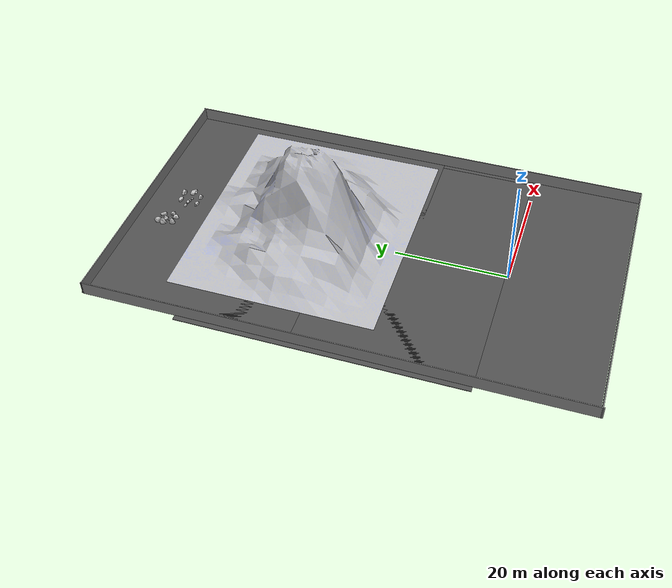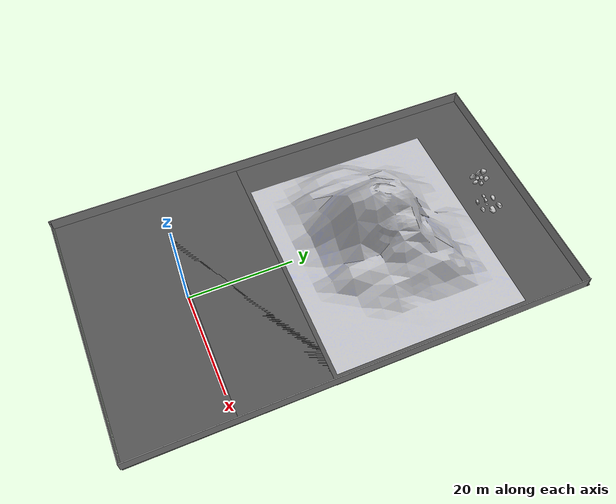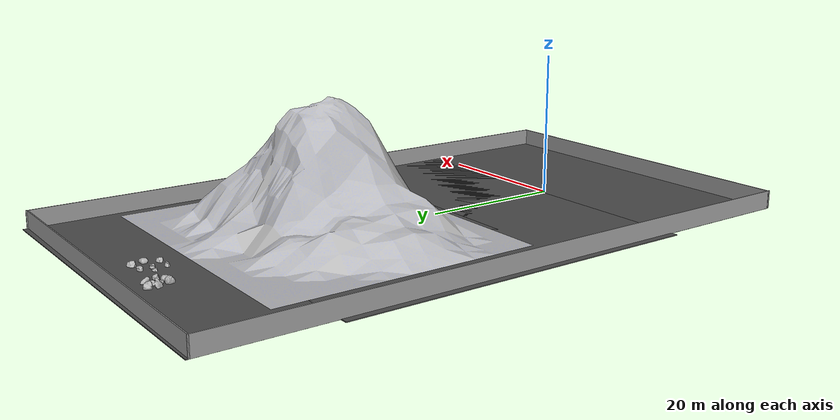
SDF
<sdf version="1.6">
 <world name="static tunnel">
  <light name="sun" type="directional">
   <pose>0 0 10 0 -0 0</pose>
   <diffuse>0.8 0.8 0.8 1</diffuse>
   <specular>0.2 0.2 0.2 1</specular>
   <attenuation>
    <range>1000</range>
    <constant>0.9</constant>
    <linear>0.01</linear>
    <quadratic>0.001</quadratic>
   </attenuation>
   <direction>-0.5 0.1 -0.9</direction>
  </light>
  <model name="asphalt_plane_1">
   <static>1</static>
   <link name="link">
    <collision name="collision"><geometry><box><size>50 50 0.1</size></box></geometry></collision>
    <visual name="visual">
     <cast_shadows>0</cast_shadows>
     <geometry><box><size>50 50 0.1</size></box></geometry>
     <material>
      <script>
       <uri>model://asphalt_plane/materials/scripts</uri>
       <uri>model://asphalt_plane/materials/textures</uri>
       <name>vrc/asphalt</name>
      </script>
     </material>
    </visual>
   </link>
   <pose>0.597976 6.1071 0 0 -0 0</pose>
  </model>
  <model name="asphalt_plane_2">
   <static>1</static>
   <link name="link">
    <collision name="collision"><geometry><box><size>50 50 0.1</size></box></geometry></collision>
    <visual name="visual">
     <cast_shadows>0</cast_shadows>
     <geometry><box><size>50 50 0.1</size></box></geometry>
     <material>
      <script>
       <uri>model://asphalt_plane/materials/scripts</uri>
       <uri>model://asphalt_plane/materials/textures</uri>
       <name>vrc/asphalt</name>
      </script>
     </material>
    </visual>
   </link>
   <pose>-0.378988 25.5648 0 0 -0 0</pose>
  </model>
  <model name="rock_1">
   <static>1</static>
   <link name="rock_1__link">
    <collision name="collision">
     <geometry><mesh><scale>3 3 3</scale><uri>model://rock_1/meshes/model.dae</uri></mesh></geometry>
    </collision>
    <visual name="visual">
     <geometry><mesh><scale>3 3 3</scale><uri>model://rock_1/meshes/model.dae</uri></mesh></geometry>
    </visual>
   </link>
   <pose>-11 55 0 0 0 -1.571</pose>
  </model>
  <model name="rock_2">
   <static>1</static>
   <link name="rock_2_link">
    <collision name="collision">
     <geometry><mesh><uri>model://rock_2/meshes/model.dae</uri></mesh></geometry>
    </collision>
    <visual name="visual"><geometry><mesh><uri>model://rock_2/meshes/model.dae</uri></mesh></geometry></visual>
   </link>
   <pose>-2.7737 60 0 0 -0 0</pose>
  </model>
  <model name="rock_4">
   <static>1</static>
   <link name="rock_4_link">
    <collision name="collision">
     <geometry><mesh><uri>model://rock_4/meshes/model.dae</uri></mesh></geometry>
    </collision>
    <visual name="visual"><geometry><mesh><uri>model://rock_4/meshes/model.dae</uri></mesh></geometry></visual>
   </link>
   <pose>1.88841 60 0 0 -0 0</pose>
  </model>
  <light name="user_point_light_0" type="point">
   <pose>0 3 6.2 0 -0 0</pose>
   <diffuse>0.5 0.5 0.5 1</diffuse>
   <specular>0.1 0.1 0.1 1</specular>
   <attenuation>
    <range>20</range>
    <constant>0.5</constant>
    <linear>0.01</linear>
    <quadratic>0.001</quadratic>
   </attenuation>
   <cast_shadows>0</cast_shadows>
   <direction>0 0 -1</direction>
  </light>
  <light name="user_point_light_1" type="point">
   <pose>0 8 6.2 0 -0 0</pose>
   <diffuse>0.5 0.5 0.5 1</diffuse>
   <specular>0.1 0.1 0.1 1</specular>
   <attenuation>
    <range>20</range>
    <constant>0.5</constant>
    <linear>0.01</linear>
    <quadratic>0.001</quadratic>
   </attenuation>
   <cast_shadows>0</cast_shadows>
   <direction>0 0 -1</direction>
  </light>
  <light name="user_point_light_2" type="point">
   <pose>0 13 6.2 0 -0 0</pose>
   <diffuse>0.5 0.5 0.5 1</diffuse>
   <specular>0.1 0.1 0.1 1</specular>
   <attenuation>
    <range>20</range>
    <constant>0.5</constant>
    <linear>0.01</linear>
    <quadratic>0.001</quadratic>
   </attenuation>
   <cast_shadows>0</cast_shadows>
   <direction>0 0 -1</direction>
  </light>
  <gravity>0 0 -9.8</gravity>
  <magnetic_field>6e-06 2.3e-05 -4.2e-05</magnetic_field>
  <atmosphere type="adiabatic"/>
  <physics name="default_physics" default="0" type="ode">
   <max_step_size>0.001</max_step_size>
   <real_time_factor>1</real_time_factor>
   <real_time_update_rate>1000</real_time_update_rate>
  </physics>
  <scene><ambient>0.4 0.4 0.4 1</ambient><background>0.7 0.7 0.7 1</background><shadows>1</shadows></scene>
  <audio><device>default</device></audio>
  <spherical_coordinates>
   <surface_model>EARTH_WGS84</surface_model>
   <latitude_deg>0</latitude_deg>
   <longitude_deg>0</longitude_deg>
   <elevation>0</elevation>
   <heading_deg>0</heading_deg>
  </spherical_coordinates>
  <model name="asphalt_plane_1_clone">
   <static>1</static>
   <link name="link">
    <collision name="collision"><geometry><box><size>50 50 0.1</size></box></geometry></collision>
    <visual name="visual">
     <cast_shadows>0</cast_shadows>
     <geometry><box><size>50 50 0.1</size></box></geometry>
     <material>
      <script>
       <uri>model://asphalt_plane/materials/scripts</uri>
       <uri>model://asphalt_plane/materials/textures</uri>
       <name>vrc/asphalt</name>
      </script>
     </material>
    </visual>
   </link>
   <pose>0.63738 42.636 0 0 -0 0</pose>
  </model>
  <model name="tunnel_closed">
   <pose>0.587089 24.0242 0 0 -0 0</pose>
   <link name="Wall_17">
    <collision name="Wall_17_Collision">
     <geometry><box><size>86.75 0.15 2.5</size></box></geometry>
     <pose>0 0 1.25 0 -0 0</pose>
    </collision>
    <visual name="Wall_17_Visual">
     <pose>0 0 1.25 0 -0 0</pose>
     <geometry><box><size>86.75 0.15 2.5</size></box></geometry>
     <material>
      <script><uri>file://media/materials/scripts/gazebo.material</uri><name>Gazebo/Grey</name></script>
      <ambient>1 1 1 1</ambient>
     </material>
     <meta><layer>0</layer></meta>
    </visual>
    <pose>-24.9714 -1e-06 0 0 -0 1.5708</pose>
   </link>
   <link name="Wall_18">
    <collision name="Wall_18_Collision">
     <geometry><box><size>50.137 0.15 2.5</size></box></geometry>
     <pose>0 0 1.25 0 -0 0</pose>
    </collision>
    <visual name="Wall_18_Visual">
     <pose>0 0 1.25 0 -0 0</pose>
     <geometry><box><size>50.137 0.15 2.5</size></box></geometry>
     <material>
      <script><uri>file://media/materials/scripts/gazebo.material</uri><name>Gazebo/Grey</name></script>
      <ambient>1 1 1 1</ambient>
     </material>
     <meta><layer>0</layer></meta>
    </visual>
    <pose>0.021063 43.042 0 0 -0 -0.007937</pose>
   </link>
   <link name="Wall_19">
    <collision name="Wall_19_Collision">
     <geometry><box><size>86.247 0.15 2.5</size></box></geometry>
     <pose>0 0 1.25 0 -0 0</pose>
    </collision>
    <visual name="Wall_19_Visual">
     <pose>0 0 1.25 0 -0 0</pose>
     <geometry><box><size>86.247 0.15 2.5</size></box></geometry>
     <material>
      <script><uri>file://media/materials/scripts/gazebo.material</uri><name>Gazebo/Grey</name></script>
      <ambient>1 1 1 1</ambient>
     </material>
     <meta><layer>0</layer></meta>
    </visual>
    <pose>24.9153 -0.04782 0 0 -0 -1.57308</pose>
   </link>
   <link name="Wall_20">
    <collision name="Wall_20_Collision">
     <geometry><box><size>49.75 0.15 2.5</size></box></geometry>
     <pose>0 0 1.25 0 -0 0</pose>
    </collision>
    <visual name="Wall_20_Visual">
     <pose>0 0 1.25 0 -0 0</pose>
     <geometry><box><size>49.75 0.15 2.5</size></box></geometry>
     <material>
      <script><uri>file://media/materials/scripts/gazebo.material</uri><name>Gazebo/Grey</name></script>
      <ambient>1 1 1 1</ambient>
     </material>
     <meta><layer>0</layer></meta>
    </visual>
    <pose>-0.214392 -43.0962 0 0 -0 3.14159</pose>
   </link>
   <static>1</static>
  </model>
 </world>
</sdf>
